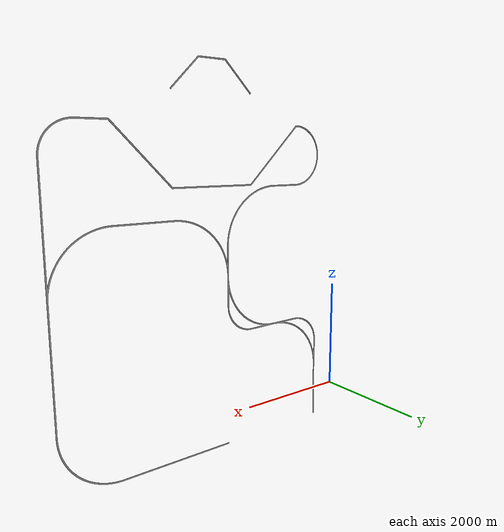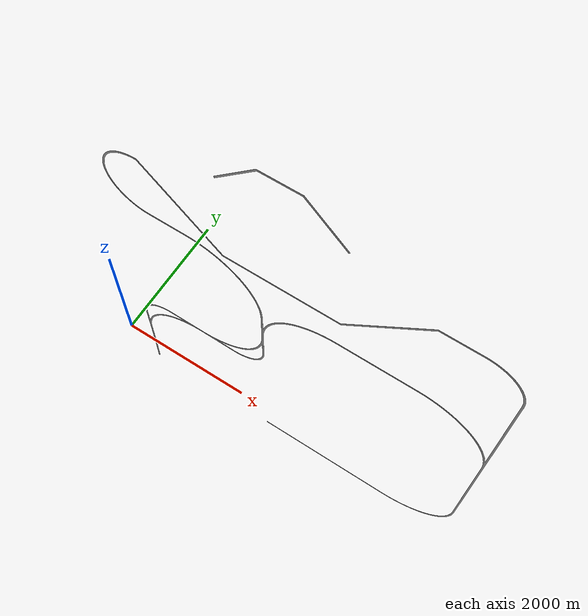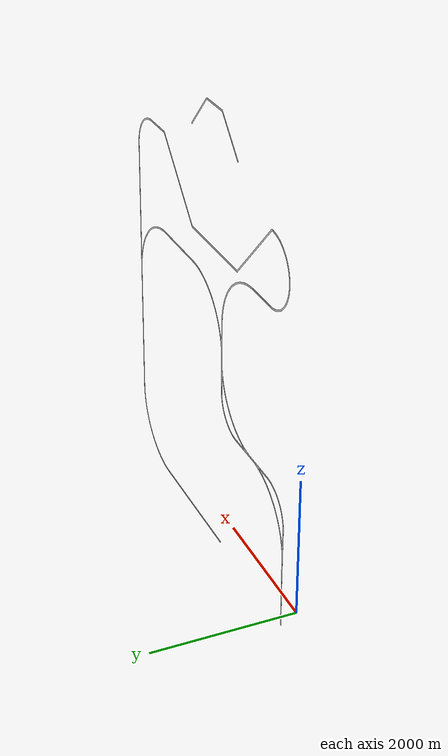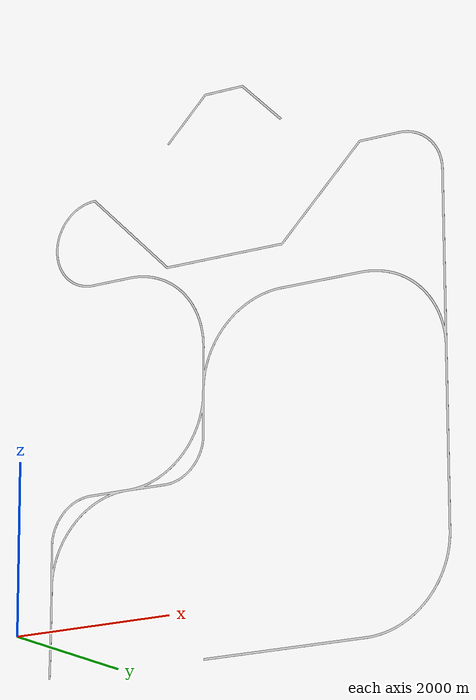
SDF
<?xml version="1.0"?>
<sdf version="1.6">
  <model name="blueTrack">
    <static>true</static>
    <link name="link">

      <!-- Visual (what you see) -->
      <visual name="visual">
        <geometry>
          <mesh>
            <uri>model://model/blueTrack/meshes/blueTrack.stl</uri>
            <scale>1 1 1</scale>
          </mesh>
        </geometry>
      </visual>

      <!-- Collision (physics interaction) -->
      <collision name="collision">
        <geometry>
          <mesh>
            <uri>model://model/blueTrack/meshes/blueTrack.stl</uri>
            <scale>1 1 1</scale>
          </mesh>
        </geometry>
      </collision>

    </link>
  </model>
</sdf>
